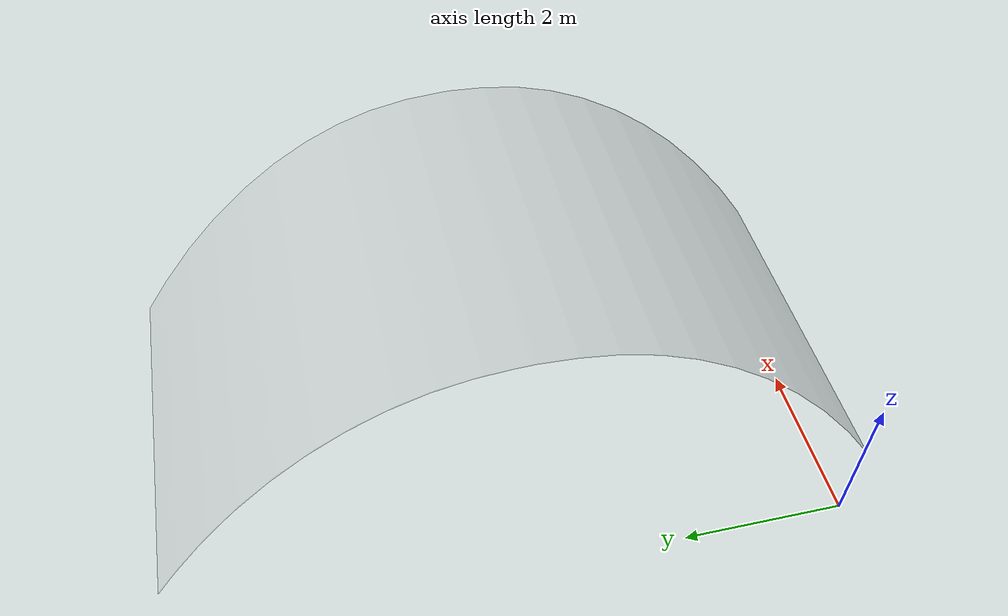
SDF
<?xml version="1.0" ?>
<sdf version="1.5">

<model name="canopy4m">
<static>1</static>
<pose>0.0 0.0 0.0 1.5707 0.0 1.5707</pose>

  <link name="link">

    <collision name="collision">
      <geometry>
        <mesh>
          <uri>model://canopy4m/canopy4m.stl</uri>
        </mesh>
      </geometry>
    </collision>

    <visual name="visual">
      <geometry>
        <mesh>
          <uri>model://canopy4m/canopy4m.stl</uri>
        </mesh>
      </geometry>
    <transparency>0.65</transparency>
    </visual>

  </link>
</model>
</sdf>
